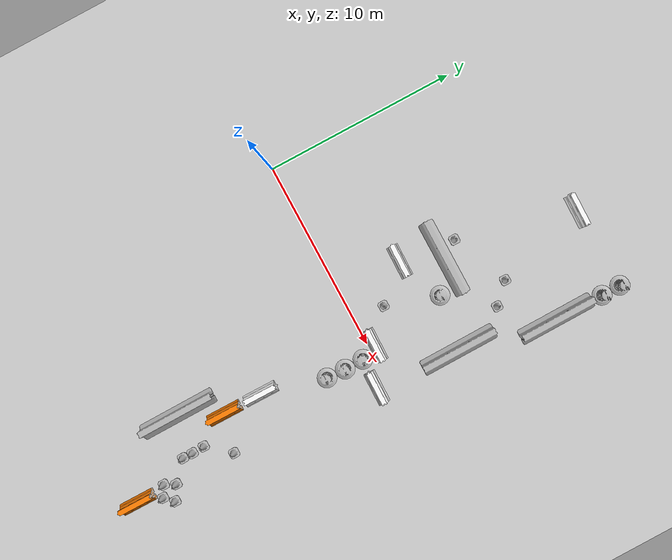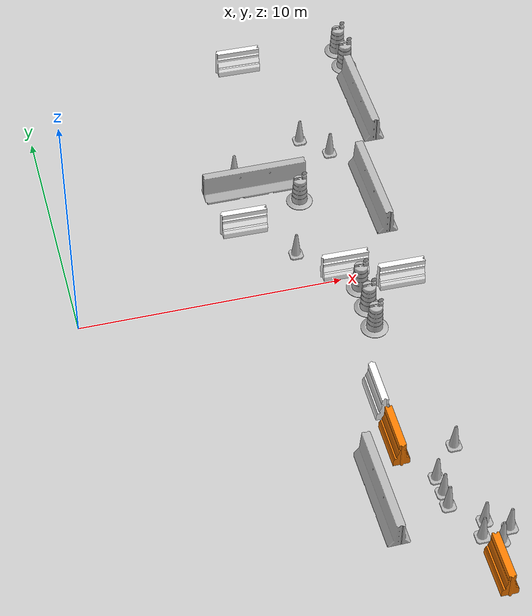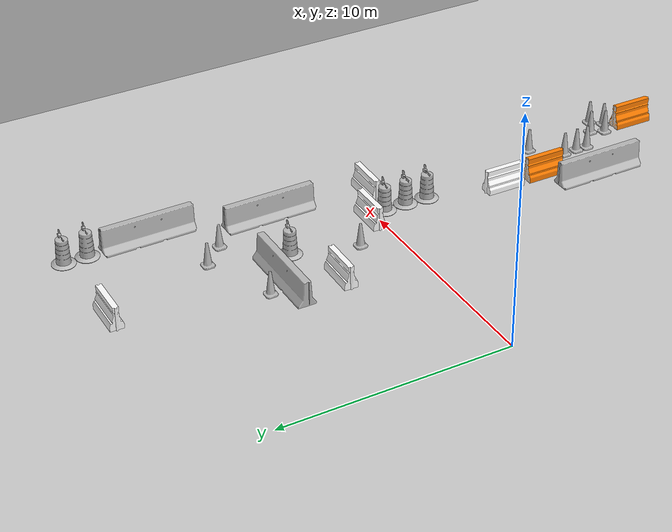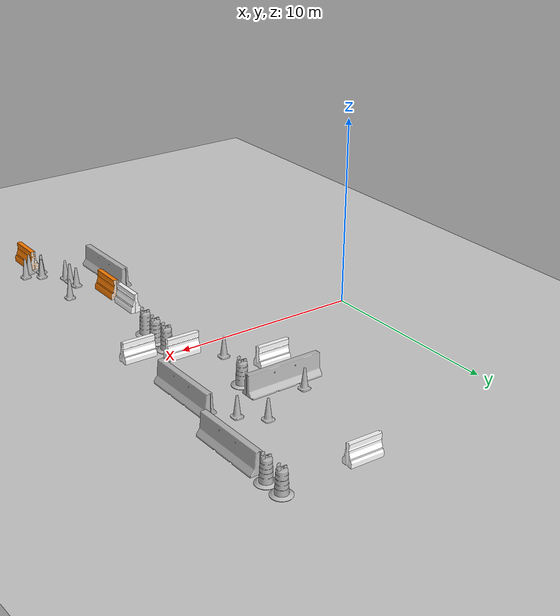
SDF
<sdf version="1.6">
 <world name="default">
  <model name="ground_plane">
   <static>1</static>
   <link name="link">
    <collision name="collision">
     <geometry><plane><normal>0 0 1</normal><size>100 100</size></plane></geometry>
     <surface>
      <contact><collide_bitmask>65535</collide_bitmask></contact>
      <friction><ode><mu>100</mu><mu2>50</mu2></ode></friction>
     </surface>
    </collision>
    <visual name="visual">
     <cast_shadows>0</cast_shadows>
     <geometry><plane><normal>0 0 1</normal><size>100 100</size></plane></geometry>
     <material>
      <script><uri>file://media/materials/scripts/gazebo.material</uri><name>Gazebo/Grey</name></script>
     </material>
    </visual>
   </link>
  </model>
  <model name="30x30env"><static>0</static><pose>32.1206 3.39752 0 0 -0 0</pose></model>
  <model name="drc_practice_white_jersey_barrier_clone_clone_0_clone">
   <static>1</static>
   <link name="link">
    <visual name="visual">
     <geometry>
      <mesh><uri>model://drc_practice_white_jersey_barrier/meshes/jersey_barrier.dae</uri></mesh>
     </geometry>
    </visual>
    <collision name="collision">
     <geometry>
      <mesh><uri>model://drc_practice_white_jersey_barrier/meshes/jersey_barrier.dae</uri></mesh>
     </geometry>
    </collision>
   </link>
   <pose>9.10269 12.4765 0 0 0 -1.58176</pose>
  </model>
  <model name="jersey_barrier_clone_clone_0">
   <static>1</static>
   <link name="link">
    <visual name="visual">
     <geometry><mesh><uri>model://jersey_barrier/meshes/jersey_barrier.dae</uri></mesh></geometry>
    </visual>
    <collision name="upright">
     <pose>0 0 0.5715 0 -0 0</pose>
     <geometry><box><size>4.06542 0.3063 1.143</size></box></geometry>
    </collision>
    <collision name="base">
     <pose>0 0 0.032258 0 -0 0</pose>
     <geometry><box><size>4.06542 0.8107 0.064516</size></box></geometry>
    </collision>
    <collision name="base2">
     <pose>0 0 0.1 0 -0 0</pose>
     <geometry><box><size>4.06542 0.65 0.1</size></box></geometry>
    </collision>
    <collision name="base3">
     <pose>0 0 0.2 0 -0 0</pose>
     <geometry><box><size>4.06542 0.5 0.1</size></box></geometry>
    </collision>
    <collision name="left-angle">
     <pose>0 -0.224 0.2401 0.9 -0 0</pose>
     <geometry><box><size>4.06542 0.5 0.064516</size></box></geometry>
    </collision>
    <collision name="right-angle">
     <pose>0 0.224 0.2401 -0.9 0 0</pose>
     <geometry><box><size>4.06542 0.5 0.064516</size></box></geometry>
    </collision>
   </link>
   <pose>8.03198 5.48004 0 0 -0 0</pose>
  </model>
  <model name="Construction Cone_0_clone_1_clone_1_clone_clone_0_clone_0">
   <link name="link">
    <collision name="collision">
     <geometry>
      <mesh><scale>10 10 10</scale><uri>model://construction_cone/meshes/construction_cone.dae</uri></mesh>
     </geometry>
    </collision>
    <visual name="visual">
     <geometry>
      <mesh><scale>10 10 10</scale><uri>model://construction_cone/meshes/construction_cone.dae</uri></mesh>
     </geometry>
    </visual>
    <inertial>
     <inertia><ixx>1</ixx><ixy>0</ixy><ixz>0</ixz><iyy>1</iyy><iyz>0</iyz><izz>1</izz></inertia>
     <mass>1</mass>
    </inertial>
   </link>
   <pose>7.45326 6.3667 -0 0 -0 0</pose>
  </model>
  <model name="Construction Barrel_clone_clone_clone">
   <link name="link">
    <inertial>
     <pose>0 0 0.4 0 -0 0</pose>
     <mass>500</mass>
     <inertia><ixx>51.2096</ixx><iyy>51.2096</iyy><izz>25</izz><ixy>0</ixy><ixz>0</ixz><iyz>0</iyz></inertia>
    </inertial>
    <collision name="collision">
     <geometry><mesh><uri>model://construction_barrel/meshes/construction_barrel.dae</uri></mesh></geometry>
    </collision>
    <visual name="visual">
     <geometry><mesh><uri>model://construction_barrel/meshes/construction_barrel.dae</uri></mesh></geometry>
    </visual>
   </link>
   <pose>9.58018 4.40792 -2e-06 7e-06 -2e-06 -0.000496</pose>
  </model>
  <model name="jersey_barrier_clone_clone_clone_clone_clone">
   <static>1</static>
   <link name="link">
    <visual name="visual">
     <geometry><mesh><uri>model://jersey_barrier/meshes/jersey_barrier.dae</uri></mesh></geometry>
    </visual>
    <collision name="upright">
     <pose>0 0 0.5715 0 -0 0</pose>
     <geometry><box><size>4.06542 0.3063 1.143</size></box></geometry>
    </collision>
    <collision name="base">
     <pose>0 0 0.032258 0 -0 0</pose>
     <geometry><box><size>4.06542 0.8107 0.064516</size></box></geometry>
    </collision>
    <collision name="base2">
     <pose>0 0 0.1 0 -0 0</pose>
     <geometry><box><size>4.06542 0.65 0.1</size></box></geometry>
    </collision>
    <collision name="base3">
     <pose>0 0 0.2 0 -0 0</pose>
     <geometry><box><size>4.06542 0.5 0.1</size></box></geometry>
    </collision>
    <collision name="left-angle">
     <pose>0 -0.224 0.2401 0.9 -0 0</pose>
     <geometry><box><size>4.06542 0.5 0.064516</size></box></geometry>
    </collision>
    <collision name="right-angle">
     <pose>0 0.224 0.2401 -0.9 0 0</pose>
     <geometry><box><size>4.06542 0.5 0.064516</size></box></geometry>
    </collision>
   </link>
   <pose>13.3725 8.96891 0 0 0 -1.56391</pose>
  </model>
  <model name="Construction Barrel_clone_clone_clone_clone">
   <link name="link">
    <inertial>
     <pose>0 0 0.4 0 -0 0</pose>
     <mass>500</mass>
     <inertia><ixx>51.2096</ixx><iyy>51.2096</iyy><izz>25</izz><ixy>0</ixy><ixz>0</ixz><iyz>0</iyz></inertia>
    </inertial>
    <collision name="collision">
     <geometry><mesh><uri>model://construction_barrel/meshes/construction_barrel.dae</uri></mesh></geometry>
    </collision>
    <visual name="visual">
     <geometry><mesh><uri>model://construction_barrel/meshes/construction_barrel.dae</uri></mesh></geometry>
    </visual>
   </link>
   <pose>13.4236 12.6037 -1e-06 -0 5e-06 0.032687</pose>
  </model>
  <model name="Construction Barrel_clone_clone_clone_clone_0">
   <link name="link">
    <inertial>
     <pose>0 0 0.4 0 -0 0</pose>
     <mass>500</mass>
     <inertia><ixx>51.2096</ixx><iyy>51.2096</iyy><izz>25</izz><ixy>0</ixy><ixz>0</ixz><iyz>0</iyz></inertia>
    </inertial>
    <collision name="collision">
     <geometry><mesh><uri>model://construction_barrel/meshes/construction_barrel.dae</uri></mesh></geometry>
    </collision>
    <visual name="visual">
     <geometry><mesh><uri>model://construction_barrel/meshes/construction_barrel.dae</uri></mesh></geometry>
    </visual>
   </link>
   <pose>13.4408 11.5814 -3e-06 -9e-06 -4e-06 -0.012609</pose>
  </model>
  <model name="jersey_barrier_clone_clone_clone_clone_clone_clone">
   <static>1</static>
   <link name="link">
    <visual name="visual">
     <geometry><mesh><uri>model://jersey_barrier/meshes/jersey_barrier.dae</uri></mesh></geometry>
    </visual>
    <collision name="upright">
     <pose>0 0 0.5715 0 -0 0</pose>
     <geometry><box><size>4.06542 0.3063 1.143</size></box></geometry>
    </collision>
    <collision name="base">
     <pose>0 0 0.032258 0 -0 0</pose>
     <geometry><box><size>4.06542 0.8107 0.064516</size></box></geometry>
    </collision>
    <collision name="base2">
     <pose>0 0 0.1 0 -0 0</pose>
     <geometry><box><size>4.06542 0.65 0.1</size></box></geometry>
    </collision>
    <collision name="base3">
     <pose>0 0 0.2 0 -0 0</pose>
     <geometry><box><size>4.06542 0.5 0.1</size></box></geometry>
    </collision>
    <collision name="left-angle">
     <pose>0 -0.224 0.2401 0.9 -0 0</pose>
     <geometry><box><size>4.06542 0.5 0.064516</size></box></geometry>
    </collision>
    <collision name="right-angle">
     <pose>0 0.224 0.2401 -0.9 0 0</pose>
     <geometry><box><size>4.06542 0.5 0.064516</size></box></geometry>
    </collision>
   </link>
   <pose>12.4106 3.92831 0 0 0 -1.56391</pose>
  </model>
  <model name="Construction Cone_0_clone_1_clone_1_clone_clone_0_clone_0_clone">
   <link name="link">
    <collision name="collision">
     <geometry>
      <mesh><scale>10 10 10</scale><uri>model://construction_cone/meshes/construction_cone.dae</uri></mesh>
     </geometry>
    </collision>
    <visual name="visual">
     <geometry>
      <mesh><scale>10 10 10</scale><uri>model://construction_cone/meshes/construction_cone.dae</uri></mesh>
     </geometry>
    </visual>
    <inertial>
     <inertia><ixx>1</ixx><ixy>0</ixy><ixz>0</ixz><iyy>1</iyy><iyz>0</iyz><izz>1</izz></inertia>
     <mass>1</mass>
    </inertial>
   </link>
   <pose>11.4326 6.67212 -3e-06 -3e-06 -1e-06 -0</pose>
  </model>
  <model name="Construction Cone_0_clone_1_clone_1_clone_clone_0_clone_0_clone_0">
   <link name="link">
    <collision name="collision">
     <geometry>
      <mesh><scale>10 10 10</scale><uri>model://construction_cone/meshes/construction_cone.dae</uri></mesh>
     </geometry>
    </collision>
    <visual name="visual">
     <geometry>
      <mesh><scale>10 10 10</scale><uri>model://construction_cone/meshes/construction_cone.dae</uri></mesh>
     </geometry>
    </visual>
    <inertial>
     <inertia><ixx>1</ixx><ixy>0</ixy><ixz>0</ixz><iyy>1</iyy><iyz>0</iyz><izz>1</izz></inertia>
     <mass>1</mass>
    </inertial>
   </link>
   <pose>10.4548 7.65109 -0 0 -0 0</pose>
  </model>
  <model name="drc_practice_white_jersey_barrier_clone_clone_0_clone_clone">
   <static>1</static>
   <link name="link">
    <visual name="visual">
     <geometry>
      <mesh><uri>model://drc_practice_white_jersey_barrier/meshes/jersey_barrier.dae</uri></mesh>
     </geometry>
    </visual>
    <collision name="collision">
     <geometry>
      <mesh><uri>model://drc_practice_white_jersey_barrier/meshes/jersey_barrier.dae</uri></mesh>
     </geometry>
    </collision>
   </link>
   <pose>7.11317 3.42217 0 0 0 -1.58176</pose>
  </model>
  <model name="Construction Cone_0_clone_1_clone_1_clone_clone_clone_clone">
   <link name="link">
    <collision name="collision">
     <geometry>
      <mesh><scale>10 10 10</scale><uri>model://construction_cone/meshes/construction_cone.dae</uri></mesh>
     </geometry>
    </collision>
    <visual name="visual">
     <geometry>
      <mesh><scale>10 10 10</scale><uri>model://construction_cone/meshes/construction_cone.dae</uri></mesh>
     </geometry>
    </visual>
    <inertial>
     <inertia><ixx>1</ixx><ixy>0</ixy><ixz>0</ixz><iyy>1</iyy><iyz>0</iyz><izz>1</izz></inertia>
     <mass>1</mass>
    </inertial>
   </link>
   <pose>8.70129 1.65433 -0 0 -0 0</pose>
  </model>
  <model name="drc_practice_white_jersey_barrier_clone_clone_0_clone_clone_clone">
   <static>1</static>
   <link name="link">
    <visual name="visual">
     <geometry>
      <mesh><uri>model://drc_practice_white_jersey_barrier/meshes/jersey_barrier.dae</uri></mesh>
     </geometry>
    </visual>
    <collision name="collision">
     <geometry>
      <mesh><uri>model://drc_practice_white_jersey_barrier/meshes/jersey_barrier.dae</uri></mesh>
     </geometry>
    </collision>
   </link>
   <pose>10.2382 0.338848 0 0 0 -1.58176</pose>
  </model>
  <model name="Construction Barrel_clone_clone_clone_clone_3">
   <link name="link">
    <inertial>
     <pose>0 0 0.4 0 -0 0</pose>
     <mass>500</mass>
     <inertia><ixx>51.2096</ixx><iyy>51.2096</iyy><izz>25</izz><ixy>0</ixy><ixz>0</ixz><iyz>0</iyz></inertia>
    </inertial>
    <collision name="collision">
     <geometry><mesh><uri>model://construction_barrel/meshes/construction_barrel.dae</uri></mesh></geometry>
    </collision>
    <visual name="visual">
     <geometry><mesh><uri>model://construction_barrel/meshes/construction_barrel.dae</uri></mesh></geometry>
    </visual>
   </link>
   <pose>10.5718 -0.537608 -2e-06 8e-06 -4e-06 -0.045447</pose>
  </model>
  <model name="Construction Barrel_clone_clone_clone_clone_4">
   <link name="link">
    <inertial>
     <pose>0 0 0.4 0 -0 0</pose>
     <mass>500</mass>
     <inertia><ixx>51.2096</ixx><iyy>51.2096</iyy><izz>25</izz><ixy>0</ixy><ixz>0</ixz><iyz>0</iyz></inertia>
    </inertial>
    <collision name="collision">
     <geometry><mesh><uri>model://construction_barrel/meshes/construction_barrel.dae</uri></mesh></geometry>
    </collision>
    <visual name="visual">
     <geometry><mesh><uri>model://construction_barrel/meshes/construction_barrel.dae</uri></mesh></geometry>
    </visual>
   </link>
   <pose>10.5852 -1.55538 -0 0 -0 0.051344</pose>
  </model>
  <model name="Construction Barrel_clone_clone_clone_clone_5">
   <link name="link">
    <inertial>
     <pose>0 0 0.4 0 -0 0</pose>
     <mass>500</mass>
     <inertia><ixx>51.2096</ixx><iyy>51.2096</iyy><izz>25</izz><ixy>0</ixy><ixz>0</ixz><iyz>0</iyz></inertia>
    </inertial>
    <collision name="collision">
     <geometry><mesh><uri>model://construction_barrel/meshes/construction_barrel.dae</uri></mesh></geometry>
    </collision>
    <visual name="visual">
     <geometry><mesh><uri>model://construction_barrel/meshes/construction_barrel.dae</uri></mesh></geometry>
    </visual>
   </link>
   <pose>10.5429 -2.56933 -0 0 -0 -0.002796</pose>
  </model>
  <model name="drc_practice_white_jersey_barrier_clone_clone_0_clone_clone_clone_clone">
   <static>1</static>
   <link name="link">
    <visual name="visual">
     <geometry>
      <mesh><uri>model://drc_practice_white_jersey_barrier/meshes/jersey_barrier.dae</uri></mesh>
     </geometry>
    </visual>
    <collision name="collision">
     <geometry>
      <mesh><uri>model://drc_practice_white_jersey_barrier/meshes/jersey_barrier.dae</uri></mesh>
     </geometry>
    </collision>
   </link>
   <pose>12.147 -0.588129 0 0 0 -1.58176</pose>
  </model>
  <model name="drc_practice_white_jersey_barrier_clone_clone_clone_0_clone_0">
   <static>1</static>
   <link name="link">
    <visual name="visual">
     <geometry>
      <mesh><uri>model://drc_practice_white_jersey_barrier/meshes/jersey_barrier.dae</uri></mesh>
     </geometry>
    </visual>
    <collision name="collision">
     <geometry>
      <mesh><uri>model://drc_practice_white_jersey_barrier/meshes/jersey_barrier.dae</uri></mesh>
     </geometry>
    </collision>
   </link>
   <pose>9.65687 -5.85338 0 0 -0 3.13979</pose>
  </model>
  <model name="drc_practice_organge_jersey_barrier_clone_clone_0_clone_clone">
   <static>1</static>
   <link name="link">
    <visual name="visual">
     <geometry>
      <mesh><uri>model://drc_practice_orange_jersey_barrier/meshes/jersey_barrier.dae</uri></mesh>
     </geometry>
    </visual>
    <collision name="collision">
     <geometry>
      <mesh><uri>model://drc_practice_orange_jersey_barrier/meshes/jersey_barrier.dae</uri></mesh>
     </geometry>
    </collision>
   </link>
   <pose>9.6583 -7.89542 0 0 -0 0</pose>
  </model>
  <model name="jersey_barrier_clone_clone_clone_clone_0_clone">
   <static>1</static>
   <link name="link">
    <visual name="visual">
     <geometry><mesh><uri>model://jersey_barrier/meshes/jersey_barrier.dae</uri></mesh></geometry>
    </visual>
    <collision name="upright">
     <pose>0 0 0.5715 0 -0 0</pose>
     <geometry><box><size>4.06542 0.3063 1.143</size></box></geometry>
    </collision>
    <collision name="base">
     <pose>0 0 0.032258 0 -0 0</pose>
     <geometry><box><size>4.06542 0.8107 0.064516</size></box></geometry>
    </collision>
    <collision name="base2">
     <pose>0 0 0.1 0 -0 0</pose>
     <geometry><box><size>4.06542 0.65 0.1</size></box></geometry>
    </collision>
    <collision name="base3">
     <pose>0 0 0.2 0 -0 0</pose>
     <geometry><box><size>4.06542 0.5 0.1</size></box></geometry>
    </collision>
    <collision name="left-angle">
     <pose>0 -0.224 0.2401 0.9 -0 0</pose>
     <geometry><box><size>4.06542 0.5 0.064516</size></box></geometry>
    </collision>
    <collision name="right-angle">
     <pose>0 0.224 0.2401 -0.9 0 0</pose>
     <geometry><box><size>4.06542 0.5 0.064516</size></box></geometry>
    </collision>
   </link>
   <pose>8.57619 -9.98274 0 0 0 -1.56391</pose>
  </model>
  <model name="Construction Cone_0_clone_1_clone_1_clone_clone_clone_clone_clone">
   <link name="link">
    <collision name="collision">
     <geometry>
      <mesh><scale>10 10 10</scale><uri>model://construction_cone/meshes/construction_cone.dae</uri></mesh>
     </geometry>
    </collision>
    <visual name="visual">
     <geometry>
      <mesh><scale>10 10 10</scale><uri>model://construction_cone/meshes/construction_cone.dae</uri></mesh>
     </geometry>
    </visual>
    <inertial>
     <inertia><ixx>1</ixx><ixy>0</ixy><ixz>0</ixz><iyy>1</iyy><iyz>0</iyz><izz>1</izz></inertia>
     <mass>1</mass>
    </inertial>
   </link>
   <pose>10.6323 -9.65409 -0 0 -1e-06 0</pose>
  </model>
  <model name="Construction Cone_0_clone_1_clone_1_clone_clone_clone_clone_clone_0">
   <link name="link">
    <collision name="collision">
     <geometry>
      <mesh><scale>10 10 10</scale><uri>model://construction_cone/meshes/construction_cone.dae</uri></mesh>
     </geometry>
    </collision>
    <visual name="visual">
     <geometry>
      <mesh><scale>10 10 10</scale><uri>model://construction_cone/meshes/construction_cone.dae</uri></mesh>
     </geometry>
    </visual>
    <inertial>
     <inertia><ixx>1</ixx><ixy>0</ixy><ixz>0</ixz><iyy>1</iyy><iyz>0</iyz><izz>1</izz></inertia>
     <mass>1</mass>
    </inertial>
   </link>
   <pose>10.6658 -10.3095 -0 0 -1e-06 0</pose>
  </model>
  <model name="Construction Cone_0_clone_1_clone_1_clone_clone_clone_clone_clone_1">
   <link name="link">
    <collision name="collision">
     <geometry>
      <mesh><scale>10 10 10</scale><uri>model://construction_cone/meshes/construction_cone.dae</uri></mesh>
     </geometry>
    </collision>
    <visual name="visual">
     <geometry>
      <mesh><scale>10 10 10</scale><uri>model://construction_cone/meshes/construction_cone.dae</uri></mesh>
     </geometry>
    </visual>
    <inertial>
     <inertia><ixx>1</ixx><ixy>0</ixy><ixz>0</ixz><iyy>1</iyy><iyz>0</iyz><izz>1</izz></inertia>
     <mass>1</mass>
    </inertial>
   </link>
   <pose>10.6586 -10.8548 -3e-06 -3e-06 -1e-06 -0</pose>
  </model>
  <model name="Construction Cone_0_clone_1_clone_1_clone_clone_clone_clone_clone_2">
   <link name="link">
    <collision name="collision">
     <geometry>
      <mesh><scale>10 10 10</scale><uri>model://construction_cone/meshes/construction_cone.dae</uri></mesh>
     </geometry>
    </collision>
    <visual name="visual">
     <geometry>
      <mesh><scale>10 10 10</scale><uri>model://construction_cone/meshes/construction_cone.dae</uri></mesh>
     </geometry>
    </visual>
    <inertial>
     <inertia><ixx>1</ixx><ixy>0</ixy><ixz>0</ixz><iyy>1</iyy><iyz>0</iyz><izz>1</izz></inertia>
     <mass>1</mass>
    </inertial>
   </link>
   <pose>11.6532 -8.46854 -3e-06 -3e-06 -1e-06 -0</pose>
  </model>
  <model name="drc_practice_organge_jersey_barrier_clone_clone_0_clone_clone_clone">
   <static>1</static>
   <link name="link">
    <visual name="visual">
     <geometry>
      <mesh><uri>model://drc_practice_orange_jersey_barrier/meshes/jersey_barrier.dae</uri></mesh>
     </geometry>
    </visual>
    <collision name="collision">
     <geometry>
      <mesh><uri>model://drc_practice_orange_jersey_barrier/meshes/jersey_barrier.dae</uri></mesh>
     </geometry>
    </collision>
   </link>
   <pose>11.5237 -13.8152 0 0 -0 0</pose>
  </model>
  <model name="Construction Cone_0_clone_1_clone_1_clone_clone_clone_clone_clone_1_clone">
   <link name="link">
    <collision name="collision">
     <geometry>
      <mesh><scale>10 10 10</scale><uri>model://construction_cone/meshes/construction_cone.dae</uri></mesh>
     </geometry>
    </collision>
    <visual name="visual">
     <geometry>
      <mesh><scale>10 10 10</scale><uri>model://construction_cone/meshes/construction_cone.dae</uri></mesh>
     </geometry>
    </visual>
    <inertial>
     <inertia><ixx>1</ixx><ixy>0</ixy><ixz>0</ixz><iyy>1</iyy><iyz>0</iyz><izz>1</izz></inertia>
     <mass>1</mass>
    </inertial>
   </link>
   <pose>11.6455 -11.7608 -0 -0 -0 -0</pose>
  </model>
  <model name="Construction Cone_0_clone_1_clone_1_clone_clone_clone_clone_clone_1_clone_0">
   <link name="link">
    <collision name="collision">
     <geometry>
      <mesh><scale>10 10 10</scale><uri>model://construction_cone/meshes/construction_cone.dae</uri></mesh>
     </geometry>
    </collision>
    <visual name="visual">
     <geometry>
      <mesh><scale>10 10 10</scale><uri>model://construction_cone/meshes/construction_cone.dae</uri></mesh>
     </geometry>
    </visual>
    <inertial>
     <inertia><ixx>1</ixx><ixy>0</ixy><ixz>0</ixz><iyy>1</iyy><iyz>0</iyz><izz>1</izz></inertia>
     <mass>1</mass>
    </inertial>
   </link>
   <pose>11.3769 -12.3383 -0 0 -1e-06 0</pose>
  </model>
  <model name="Construction Cone_0_clone_1_clone_1_clone_clone_clone_clone_clone_1_clone_1">
   <link name="link">
    <collision name="collision">
     <geometry>
      <mesh><scale>10 10 10</scale><uri>model://construction_cone/meshes/construction_cone.dae</uri></mesh>
     </geometry>
    </collision>
    <visual name="visual">
     <geometry>
      <mesh><scale>10 10 10</scale><uri>model://construction_cone/meshes/construction_cone.dae</uri></mesh>
     </geometry>
    </visual>
    <inertial>
     <inertia><ixx>1</ixx><ixy>0</ixy><ixz>0</ixz><iyy>1</iyy><iyz>0</iyz><izz>1</izz></inertia>
     <mass>1</mass>
    </inertial>
   </link>
   <pose>11.9431 -12.6672 -1e-06 2e-06 2e-06 0</pose>
  </model>
  <model name="Construction Cone_0_clone_1_clone_1_clone_clone_clone_clone_clone_1_clone_2">
   <link name="link">
    <collision name="collision">
     <geometry>
      <mesh><scale>10 10 10</scale><uri>model://construction_cone/meshes/construction_cone.dae</uri></mesh>
     </geometry>
    </collision>
    <visual name="visual">
     <geometry>
      <mesh><scale>10 10 10</scale><uri>model://construction_cone/meshes/construction_cone.dae</uri></mesh>
     </geometry>
    </visual>
    <inertial>
     <inertia><ixx>1</ixx><ixy>0</ixy><ixz>0</ixz><iyy>1</iyy><iyz>0</iyz><izz>1</izz></inertia>
     <mass>1</mass>
    </inertial>
   </link>
   <pose>12.3843 -12.2157 -3e-06 -3e-06 -1e-06 -0</pose>
  </model>
 </world>
</sdf>
